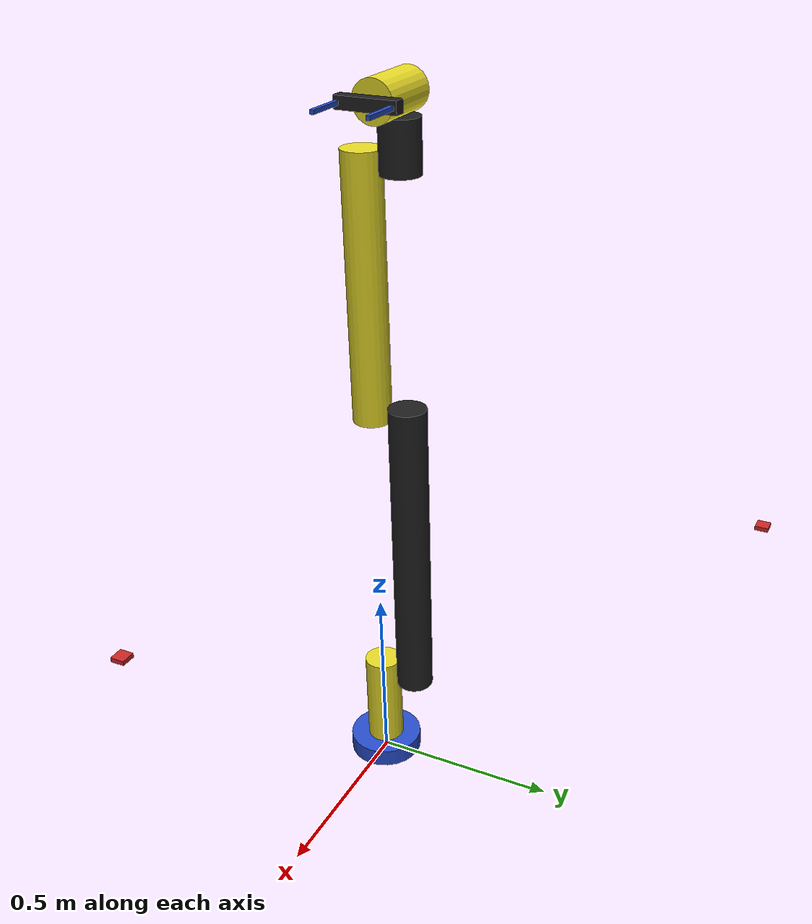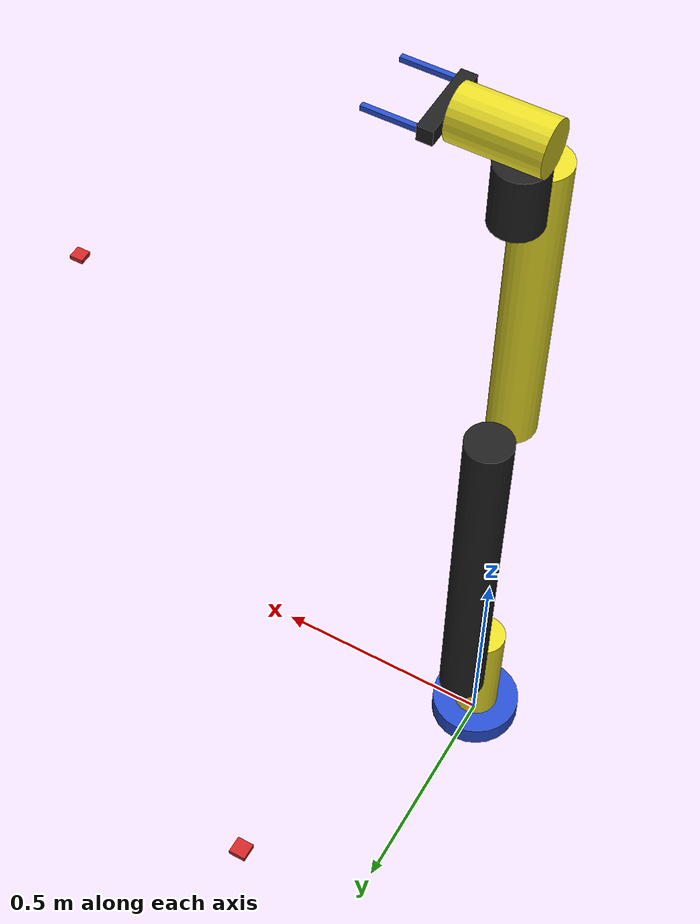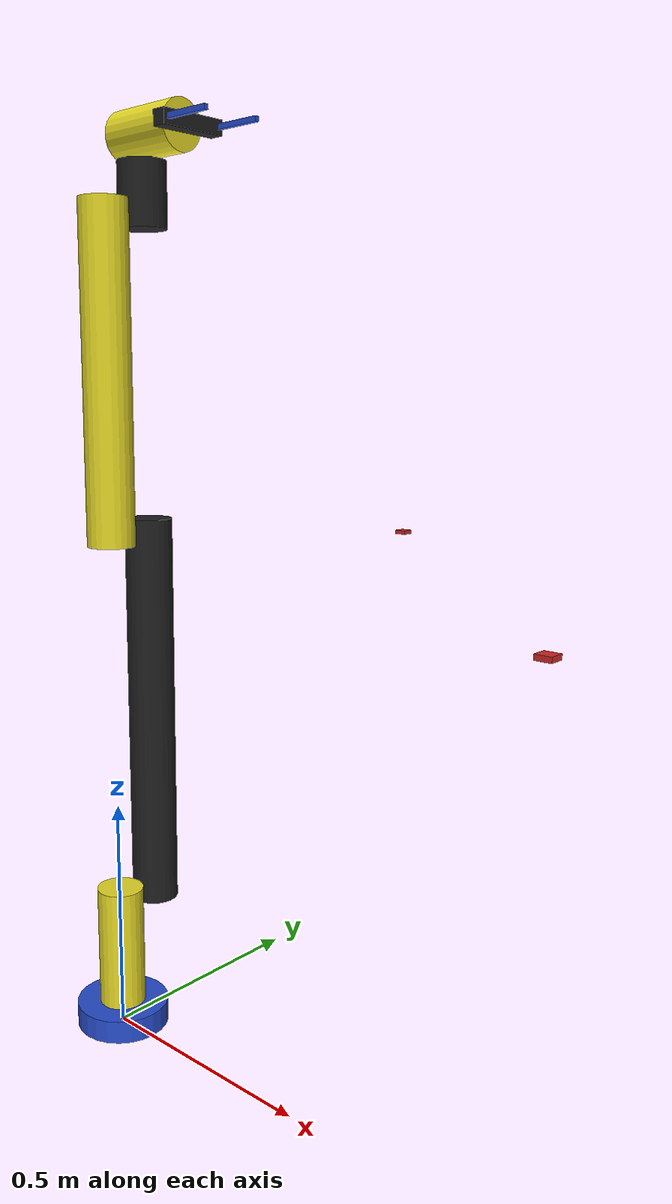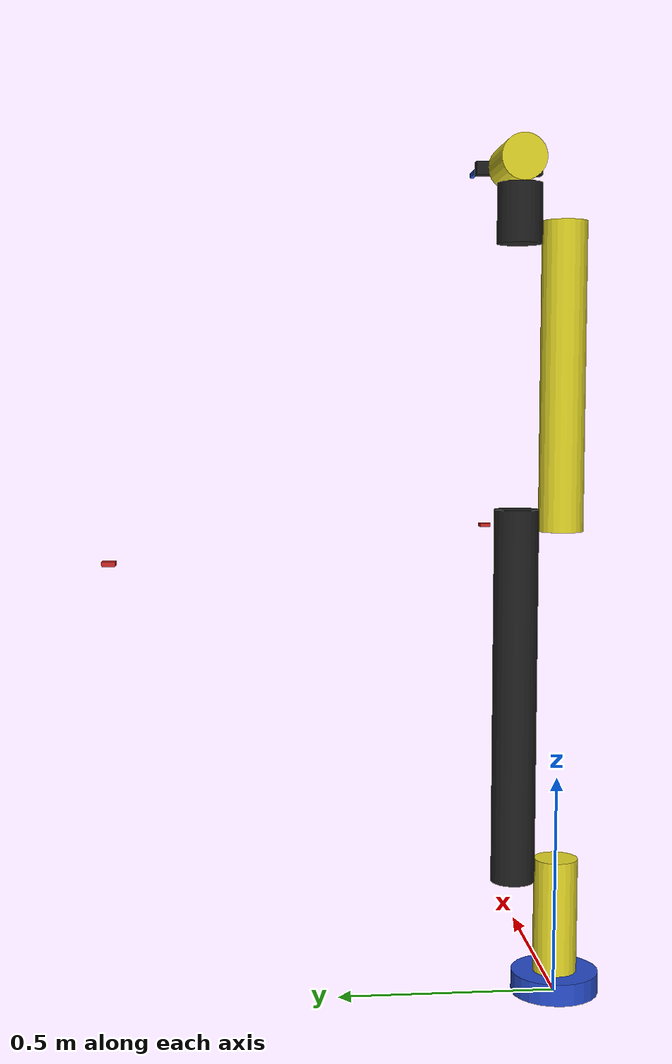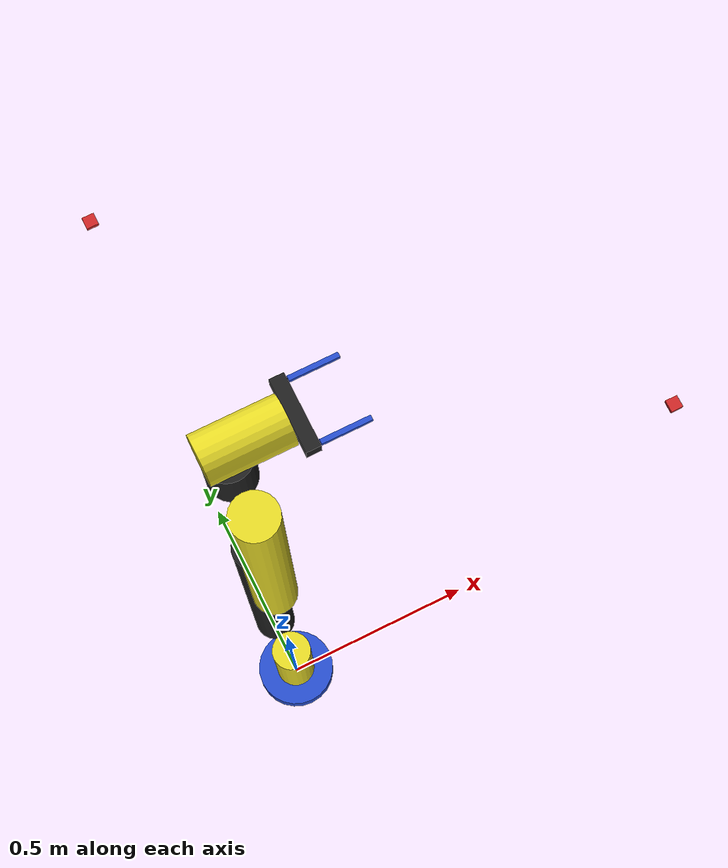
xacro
<?xml version = "1.0"?>
<robot name="cobot" xmlns:xacro="http://www.ros.org/wiki/xacro">

    <xacro:include filename="$(find cobot_sim)/urdf/joint_link.xacro"/>
    <xacro:include filename="$(find cobot_sim)/urdf/gripper.xacro"/>
    <xacro:include filename="$(find cobot_sim)/urdf/camera.xacro"/>
    <xacro:include filename="$(find cobot_sim)/urdf/camera2.xacro"/>

    <!-- Constants -->
    <xacro:property name="deg_to_rad" value="0.01745329251994329577"/>
    <xacro:property name="M_SCALE" value="0.001 0.001 0.001"/>
    <xacro:property name="M_PI" value="3.14159"/>

    <!-- Fix the cobot to the world-->
    <link name="world"/>

    <xacro:cobot_link_cylinder name="base_link" origin_xyz="0.0 0.0 0.025" origin_rpy= "0 0 0"
                            radius="0.1" length="0.05"
                            mass="1" ixx="0.01625" ixy="0" ixz="0" iyy="0.01625" iyz="0" izz="0.005" />

    <joint name="fixed" type="fixed">
        <parent link="world"/>
        <child link="base_link"/>
    </joint>

    <xacro:cobot_link_cylinder name="link1" origin_xyz="0.0 0.0 0.132" origin_rpy= "0 0 0"
                            radius="0.05" length="0.264"
                            mass="1.5" ixx="0.054147" ixy="0" ixz="0" iyy="0.054147" iyz="0" izz="0.001875" />

    <xacro:cobot_joint name="base_link__link1" type="revolute" parent="base_link" child="link1"
                            axis="0 0 1" limit_l="-3.14" limit_u="3.14" limit_v="0.5" limit_e="1000"
                            origin_xyz="0 0 0.05" origin_rpy="0 0 0" />

    <xacro:cobot_link_cylinder name="link2" origin_xyz="0.0 0.0 0.425" origin_rpy= "0 0 0"
                            radius="0.05" length="0.850"
                            mass="2" ixx="0.4816" ixy="0" ixz="0" iyy="0" iyz="0" izz="0.4816"/>

    <xacro:cobot_joint name="link1__link2" type="revolute" parent="link1" child="link2"
                            axis="0 1 0" limit_l="-1.57" limit_u="1.57" limit_v="0.5" limit_e="1000"
                            origin_xyz="0 0.1 0.214" origin_rpy="0 0 0" />

    <xacro:cobot_link_cylinder name="link3" origin_xyz="0.0 0.0 0.340" origin_rpy= "0 0 0"
                            radius="0.05" length="0.680"
                            mass="2" ixx="0.4816" ixy="0" ixz="0" iyy="0" iyz="0" izz="0.4816"/>

    <xacro:cobot_joint name="link2__link3" type="revolute" parent="link2" child="link3"
                            axis="0 1 0" limit_l="-3.14" limit_u="3.14" limit_v="0.5" limit_e="1000"
                            origin_xyz="0 -0.1 0.8" origin_rpy="0 0 0" />

    <xacro:cobot_link_cylinder name="link4" origin_xyz="0.0 0.0 0.065" origin_rpy= "0 0 0"
                            radius="0.05" length="0.130"
                            mass="1" ixx="0.00565" ixy="0" ixz="0" iyy="0" iyz="0" izz="0.00565"/>

    <xacro:cobot_joint name="link3__link4" type="revolute" parent="link3" child="link4"
                            axis="0 1 0" limit_l="-3.14" limit_u="3.14" limit_v="0.5" limit_e="1000"
                            origin_xyz="0 0.1 0.630" origin_rpy="0 0 0" />

    <xacro:cobot_link_cylinder name="link5" origin_xyz="0.0 0.0 0.035" origin_rpy= "0 0 0"
                            radius="0.05" length="0.170"
                            mass="2" ixx="0.4816" ixy="0" ixz="0" iyy="0" iyz="0" izz="0.4816"/>

    <xacro:cobot_joint name="link4__link5" type="revolute" parent="link4" child="link5"
                            axis="1 0 0" limit_l="-3.14" limit_u="3.14" limit_v="0.5" limit_e="1000"
                            origin_xyz="0 0.0 0.180" origin_rpy="0 1.57 0" />

    <!-- Build the TCP or end effector-->

    <xacro:gripper parent="link5" origin_xyz="0 0.0 0.125" />

    <!-- put transmission in each joint-->

    <xacro:transmission name="trans_base_link__link1"
                        joint_name="base_link__link1"
                        actuator_name="motor_base_link__link1" />

    <xacro:transmission name="trans_link1__link2"
                        joint_name="link1__link2"
                        actuator_name="motor_link1__link2" />

    <xacro:transmission name="trans_link2__link3"
                        joint_name="link2__link3"
                        actuator_name="motor_link2__link3" />

    <xacro:transmission name="trans_link3__link4"
                        joint_name="link3__link4"
                        actuator_name="motor_link3__link4" />

    <xacro:transmission name="trans_link4__link5"
                        joint_name="link4__link5"
                        actuator_name="motor_link4__link5" />

    <!-- Gazebo plugin -->
    <gazebo>
        <plugin name="gazebo_ros_control" filename="libgazebo_ros_control.so">
            <robotNamespace>/cobot</robotNamespace>
        </plugin>
    </gazebo>

    <!-- Make the robot more fancy :)-->
    <gazebo reference="base_link" >
        <material>Gazebo/Blue</material>
    </gazebo>
    <gazebo reference="link1" >
        <material>Gazebo/Yellow</material>
    </gazebo>
    <gazebo reference="link2" >
        <material>Gazebo/Black</material>
    </gazebo>
    <gazebo reference="link3" >
        <material>Gazebo/Yellow</material>
    </gazebo>
    <gazebo reference="link4" >
        <material>Gazebo/Black</material>
    </gazebo>
    <gazebo reference="link5" >
        <material>Gazebo/Yellow</material>
    </gazebo>
    <gazebo reference="gripper_connector" >
        <material>Gazebo/Black</material>
    </gazebo>
    <gazebo reference="gripper_right" >
        <material>Gazebo/Blue</material>
    </gazebo>
    <gazebo reference="gripper_left" >
        <material>Gazebo/Blue</material>
    </gazebo>

</robot>

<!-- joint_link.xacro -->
<robot xmlns:xacro="http://www.ros.org/wiki/xacro">

    <xacro:macro name="cobot_link_cylinder" params="name origin_xyz origin_rpy radius length mass ixx ixy ixz iyy iyz izz">
        <link name="${name}">
            <inertial>
                <origin xyz="${origin_xyz}" rpy="${origin_rpy}"/>
                <mass value="${mass}"/>
                <inertia ixx="${ixx}" ixy="${ixy}" ixz="${ixz}" iyy="${iyy}" iyz="${iyz}" izz="${izz}"/>
            </inertial>
            <visual>
                <geometry>
                    <cylinder radius="${radius}" length="${length}"/>
                </geometry>
                <origin xyz="${origin_xyz}" rpy="${origin_rpy}"/>
            </visual>
            <collision>
                <geometry>
                    <cylinder radius="${radius}" length="${length}"/>
                </geometry>
                <origin xyz="${origin_xyz}" rpy="${origin_rpy}"/>
            </collision>
        </link>
    </xacro:macro>

    <xacro:macro name="cobot_link_box" params="name origin_xyz origin_rpy size mass ixx ixy ixz iyy iyz izz">
        <link name="${name}">
            <inertial>
                <origin xyz="${origin_xyz}" rpy="${origin_rpy}"/>
                <mass value="${mass}"/>
                <inertia ixx="${ixx}" ixy="${ixy}" ixz="${ixz}" iyy="${iyy}" iyz="${iyz}" izz="${izz}"/>
            </inertial>
            <visual>
                <geometry>
                    <box size="${size}"/>
                </geometry>
                <origin xyz="${origin_xyz}" rpy="${origin_rpy}"/>
            </visual>
            <collision>
                <geometry>
                    <box size="${size}"/>
                </geometry>
                <origin xyz="${origin_xyz}" rpy="${origin_rpy}"/>
            </collision>
        </link>
    </xacro:macro>

    <xacro:macro name="cobot_joint" params="name type parent child axis limit_l limit_u limit_v limit_e origin_xyz origin_rpy">
        <joint name="${name}" type="${type}">
            <parent link="${parent}"/>
            <child link="${child}"/>
            <axis xyz="${axis}"/>
            <limit lower="${limit_l}" upper="${limit_u}" velocity="${limit_v}" effort="${limit_e}"/>
            <origin xyz="${origin_xyz}" rpy="${origin_rpy}"/>
        </joint>
    </xacro:macro>

    <xacro:macro name="transmission" params="name joint_name actuator_name">
        <transmission name="${name}" >
            <type>transmission_interface/SimpleTransmission</type>
            <joint name = "${joint_name}" >
                <hardwareInterface>hardware_interface/PositionJointInterface</hardwareInterface>
            </joint>
            <actuator name="${actuator_name}" >
                <hardwareInterface>hardware_interface/PositionJointInterface</hardwareInterface>
                <mechanicalReduction>1</mechanicalReduction>
            </actuator>
        </transmission>
    </xacro:macro>

    <xacro:macro name="transmission_effort" params="name joint_name actuator_name">
        <transmission name="${name}" >
            <type>transmission_interface/SimpleTransmission</type>
            <joint name = "${joint_name}" >
                <hardwareInterface>hardware_interface/EffortJointInterface</hardwareInterface>
            </joint>
            <actuator name="${actuator_name}" >
                <hardwareInterface>hardware_interface/EffortJointInterface</hardwareInterface>
                <mechanicalReduction>1</mechanicalReduction>
            </actuator>
        </transmission>
    </xacro:macro>

</robot>

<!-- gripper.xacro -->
<robot xmlns:xacro="http://www.ros.org/wiki/xacro">

    <xacro:include filename="$(find cobot_sim)/urdf/joint_link.xacro"/>

    <!-- Model a gripper-->
    <xacro:macro name="gripper" params="parent origin_xyz">

        <!-- Gripper connector-->
        <xacro:cobot_link_box name="gripper_connector" origin_xyz="0.0 0.0 0.0125" origin_rpy="0 0 0"
                            size="0.03 0.150 0.03"
                            mass="1" ixx="0.00195" ixy="0" ixz="0" iyy="0.00195" iyz="0" izz="0.00015"/>

        <joint name="gripper_joint" type="revolute">
            <parent link="${parent}"/>
            <child link="gripper_connector"/>
            <axis xyz="0 0 1"/>
            <limit lower="-3.14" upper="3.14" velocity="0.5" effort="200"/>
            <origin xyz="${origin_xyz}" rpy="0 0 0"/>
            <dynamics damping="1" friction="10"/>
        </joint>

        <xacro:transmission name="trans_gripper_joint"
                        joint_name="gripper_joint"
                        actuator_name="motor_gripper_joint" />

        <!-- Gripper right-->
        <xacro:cobot_link_box name="gripper_right" origin_xyz="0.0 0.0 0.05" origin_rpy="0 0 0"
                            size="0.01 0.01 0.1"
                            mass="0.5" ixx="0.00042" ixy="0" ixz="0" iyy="0.00042" iyz="0" izz="0.0000083"/>

        <joint name="gripper_right_joint" type="prismatic">
            <parent link="gripper_connector"/>
            <child link="gripper_right"/>
            <axis xyz="0 1 0"/>
            <limit lower="0" upper="0.055" velocity="0.5" effort="200"/>
            <origin xyz="0 -0.065 0.03" rpy="0 0 0"/>
            <dynamics damping="1" friction="10"/>
        </joint>

        <xacro:transmission_effort name="trans_gripper_right_joint"
                        joint_name="gripper_right_joint"
                        actuator_name="motor_gripper_right_joint" />

        <!-- Gripper left-->
        <xacro:cobot_link_box name="gripper_left" origin_xyz="0.0 0.0 0.05" origin_rpy="0 0 0"
                            size="0.01 0.01 0.1"
                            mass="0.5" ixx="0.00042" ixy="0" ixz="0" iyy="0.00042" iyz="0" izz="0.0000083"/>

        <joint name="gripper_left_joint" type="prismatic">
            <parent link="gripper_connector"/>
            <child link="gripper_left"/>
            <axis xyz="0 1 0"/>
            <limit lower="-0.055" upper="0" velocity="0.5" effort="200"/>
            <origin xyz="0 0.065 0.03" rpy="0 0 0"/>
            <dynamics damping="1" friction="2"/>
            <mimic joint="gripper_right_joint" multiplier="-1.0" offset="0" />
        </joint>

        <xacro:transmission_effort name="trans_gripper_left_joint"
                        joint_name="gripper_left_joint"
                        actuator_name="motor_gripper_left_joint" />

        <!-- ros control plugin with mimic-->

        <xacro:macro name="mimic_joint_plugin_gazebo" params="parent_joint mimic_joint has_pid:=false multiplier:=-1.0 offset:=0 sensitiveness:=0.0 max_effort:=200 robot_namespace:='/cobot'">
            <gazebo>
                <plugin name="${mimic_joint}_mimic_joint_plugin" filename="libroboticsgroup_upatras_gazebo_mimic_joint_plugin.so">
                    <joint>${parent_joint}</joint>
                    <mimicJoint>${mimic_joint}</mimicJoint>
                    <xacro:if value="${has_pid}">
                        <hasPID />
                    </xacro:if>
                    <multiplier>${multiplier}</multiplier>
                    <offset>${offset}</offset>
                    <sensitiveness>${sensitiveness}</sensitiveness>
                    <maxEffort>${max_effort}</maxEffort>
                    <xacro:unless value="${robot_namespace == '/cobot'}">
                        <robotNamespace>($robot_namespace)</robotNamespace>
                    </xacro:unless>
                </plugin>
            </gazebo>
        </xacro:macro>

        <xacro:mimic_joint_plugin_gazebo  parent_joint="gripper_right_joint" mimic_joint="gripper_left_joint"
                                            has_pid="false" multiplier="-1.0" max_effort="200" />

        <gazebo>
            <plugin name="gazebo_grasp_fix" filename="libgazebo_grasp_fix.so">
                <arm>
                    <arm_name>cobot</arm_name>
                    <palm_link>gripper_connector</palm_link>
                    <gripper_link> gripper_right </gripper_link>
                    <gripper_link> gripper_left </gripper_link>
                </arm>
                <forces_angle_tolerance>100</forces_angle_tolerance>
                <update_rate>10</update_rate>
                <grip_count_threshold>3</grip_count_threshold>
                <max_grip_count>10</max_grip_count>
                <release_tolerance>0.001</release_tolerance>
                <disable_collision_on_attach>false</disable_collision_on_attach>
                <contact_topic>__default_topic__</contact_topic>
            </plugin>
        </gazebo>

    </xacro:macro>

</robot>

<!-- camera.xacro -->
<robot xmlns:xacro="http://www.ros.org/wiki/xacro" >

    <!-- Camera 1-->
    <joint name="camera_joint" type="fixed">
        <parent link="base_link"/>
        <child link="camera_link"/>
        <origin xyz="1 0 1" rpy="0 1.57 0"/>
    </joint>

    <link name="camera_link">
        <visual>
            <geometry>
                <box size="0.010 0.03 0.03"/>
            </geometry>
            <material name="red"/>
        </visual>
    </link>

    <joint name="camera_optical_joint" type="fixed">
        <parent link="camera_link"/>
        <child link="camera_link_optical"/>
        <origin xyz="0 0 0" rpy="${-pi/2} 0 ${-pi/2}"/>
    </joint>

    <link name="camera_link_optical"></link>

    <!-- camera -->
    <gazebo reference="camera_link">
      <sensor type="camera" name="camera1">
        <update_rate>30.0</update_rate>
        <camera name="head">
          <horizontal_fov>1.089</horizontal_fov>
          <image>
            <width>640</width>
            <height>480</height>
            <format>R8G8B8</format>
          </image>
          <clip>
            <near>0.05</near>
            <far>8.0</far>
          </clip>
          <noise>
            <type>gaussian</type>
            <!-- Noise is sampled independently per pixel on each frame.
                That pixel's noise value is added to each of its color
                channels, which at that point lie in the range [0,1]. -->
            <mean>0.0</mean>
            <stddev>0.007</stddev>
          </noise>
        </camera>
        <plugin name="camera_controller" filename="libgazebo_ros_camera.so">
          <alwaysOn>true</alwaysOn>
          <updateRate>0.0</updateRate>
          <cameraName>cobot/camera1</cameraName>
          <imageTopicName>image_raw</imageTopicName>
          <cameraInfoTopicName>camera_info</cameraInfoTopicName>
          <frameName>camera_link</frameName>
          <hackBaseline>0.07</hackBaseline>
          <distortionK1>0.0</distortionK1>
          <distortionK2>0.0</distortionK2>
          <distortionK3>0.0</distortionK3>
          <distortionT1>0.0</distortionT1>
          <distortionT2>0.0</distortionT2>
        </plugin>
      </sensor>
    </gazebo>

</robot>

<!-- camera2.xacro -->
<robot xmlns:xacro="http://www.ros.org/wiki/xacro" >

    <!-- Camera 2-->
    <joint name="camera2_joint" type="fixed">
        <parent link="base_link"/>
        <child link="camera2_link"/>
        <origin xyz="0 1 1" rpy="0 1.57 0"/>
    </joint>

    <link name="camera2_link">
        <visual>
            <geometry>
                <box size="0.010 0.03 0.03"/>
            </geometry>
            <material name="red"/>
        </visual>
    </link>

    <joint name="camera2_optical_joint" type="fixed">
        <parent link="camera2_link"/>
        <child link="camera2_link_optical"/>
        <origin xyz="0 0 0" rpy="${-pi/2} 0 ${-pi/2}"/>
    </joint>

    <link name="camera2_link_optical"></link>

    <!-- camera -->
    <gazebo reference="camera2_link">
      <sensor type="camera" name="camera2">
        <update_rate>30.0</update_rate>
        <camera name="head">
          <horizontal_fov>1.089</horizontal_fov>
          <image>
            <width>640</width>
            <height>480</height>
            <format>R8G8B8</format>
          </image>
          <clip>
            <near>0.05</near>
            <far>8.0</far>
          </clip>
          <noise>
            <type>gaussian</type>
            <!-- Noise is sampled independently per pixel on each frame.
                That pixel's noise value is added to each of its color
                channels, which at that point lie in the range [0,1]. -->
            <mean>0.0</mean>
            <stddev>0.007</stddev>
          </noise>
        </camera>
        <plugin name="camera2_controller" filename="libgazebo_ros_camera.so">
          <alwaysOn>true</alwaysOn>
          <updateRate>0.0</updateRate>
          <cameraName>cobot/camera2</cameraName>
          <imageTopicName>image_raw</imageTopicName>
          <cameraInfoTopicName>camera_info</cameraInfoTopicName>
          <frameName>camera_link</frameName>
          <hackBaseline>0.07</hackBaseline>
          <distortionK1>0.0</distortionK1>
          <distortionK2>0.0</distortionK2>
          <distortionK3>0.0</distortionK3>
          <distortionT1>0.0</distortionT1>
          <distortionT2>0.0</distortionT2>
        </plugin>
      </sensor>
    </gazebo>

</robot>
